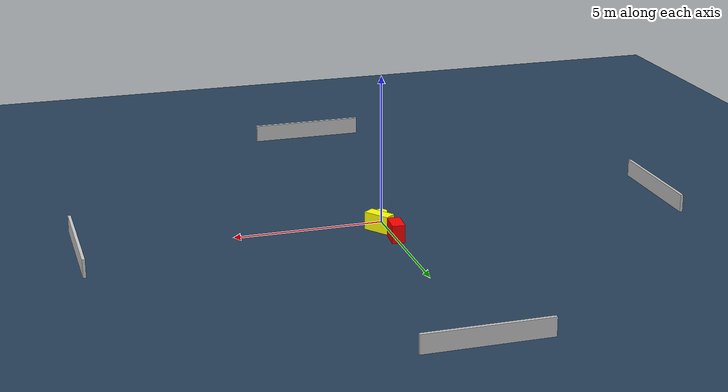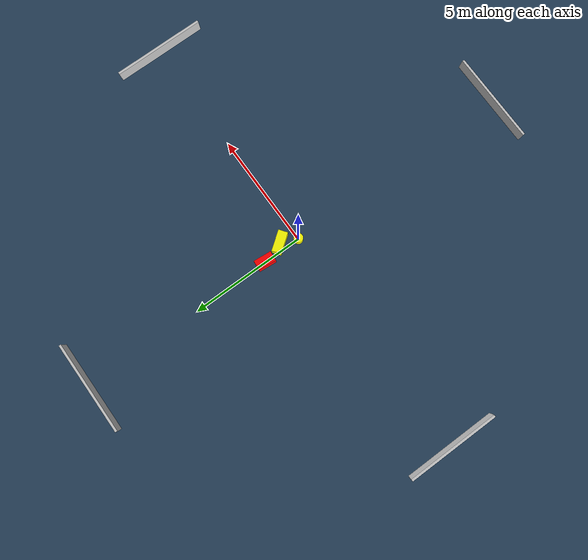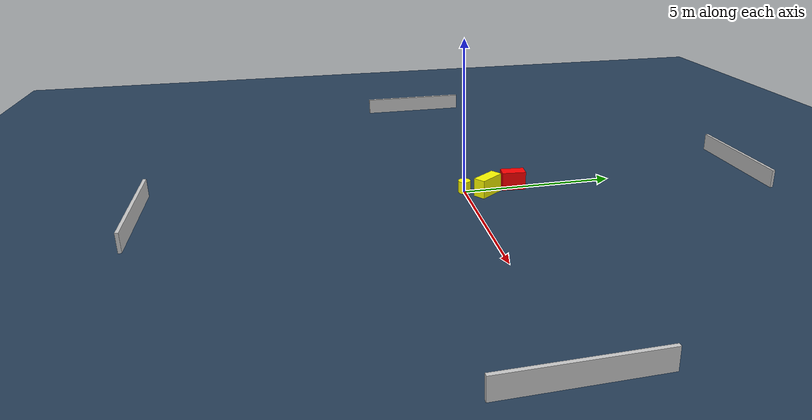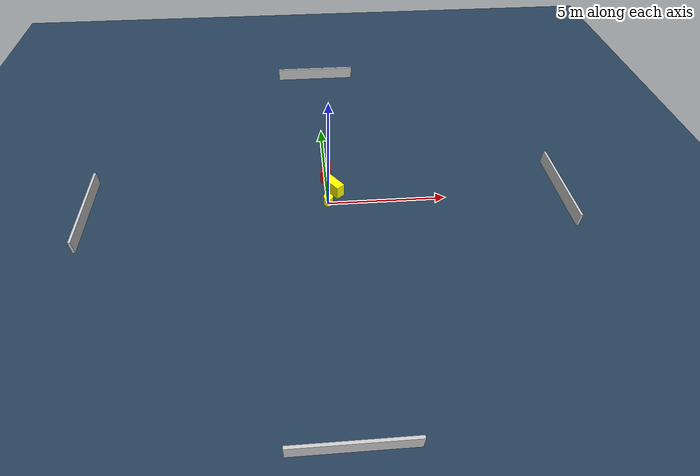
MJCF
<?xml version="1.0" ?>
<mujoco model="generated_environment">
  <option timestep="0.01" integrator="RK4" cone="elliptic"/>
  <default>
    <geom density="1"/>
  </default>
  <asset>
    <texture builtin="gradient" height="3072" name="skybox" rgb1="0.3 0.5 0.7" rgb2="0 0 0" type="skybox" width="512"/>
    <texture builtin="checker" height="300" name="groundplane" rgb1="0.2 0.3 0.4" rgb2="0.1 0.2 0.3" type="2d" width="300"/>
    <material name="groundplane" reflectance="0.2" texrepeat="5 5" texture="groundplane"/>
  </asset>
  <worldbody>
    <light dir="0 0 -1" directional="true" pos="0 0 1.5"/>
    <geom condim="3" friction="0.5 0.005 0.001" material="groundplane" name="floor" pos="0 0 0" size="0 0 0.05" type="plane"/>
    <body name="walls">
      <geom name="wall_1" condim="4" pos="-10.0 0.0 0.3" rgba="0.800000011920929 0.800000011920929 0.800000011920929 1.0" size="0.05 2.0 0.3" type="box"/>
      <geom name="wall_2" condim="4" pos="10.0 0.0 0.3" rgba="0.800000011920929 0.800000011920929 0.800000011920929 1.0" size="0.05 2.0 0.3" type="box"/>
      <geom name="wall_3" condim="4" pos="0.0 -10.0 0.3" rgba="0.800000011920929 0.800000011920929 0.800000011920929 1.0" size="2.0 0.05 0.3" type="box"/>
      <geom name="wall_4" condim="4" pos="0.0 10.0 0.3" rgba="0.800000011920929 0.800000011920929 0.800000011920929 1.0" size="2.0 0.05 0.3" type="box"/>
    </body>
    <body name="robot">
      <joint name="joint_x" type="slide" pos="0 0 0" axis="1 0 0"/>
      <joint name="joint_y" type="slide" pos="0 0 0" axis="0 1 0"/>
      <geom name="robot" type="cylinder" pos="0.0 0.0 0.2" size="0.2 0.2 0.0" mass="5.0" friction="1.0 0.005 0.0001" condim="4" rgba="1.0 1.0 0.0 1.0"/>
    </body>
    <body name="obstacle_1_movable">
      <geom name="obstacle_1_movable" condim="4" pos="0.28481258798758785 0.7093186106683472 0.3" euler="0 0 216.55362258775125" friction="0.0 0.005 0.001" rgba="1.0 1.0 0.0 1.0" size="0.20016571934300006 0.4534377136027113 0.3" type="box" mass="0.1"/>
      <joint type="free"/>
    </body>
    <body name="obstacle_2_static">
      <geom name="obstacle_2_static" condim="4" pos="0.009700535475911277 1.6380694575515757 0.3" euler="0 0 265.04536216342444" friction="0.0 0.005 0.001" rgba="1.0 0.0 0.0 1.0" size="0.38838948227837977 0.21242503245038932 0.3" type="box"/>
    </body>
  </worldbody>
  <actuator>
    <motor name="actuator_x" joint="joint_x" gear="1" ctrlrange="-1 1"/>
    <motor name="actuator_y" joint="joint_y" gear="1" ctrlrange="-1 1"/>
  </actuator>
</mujoco>
